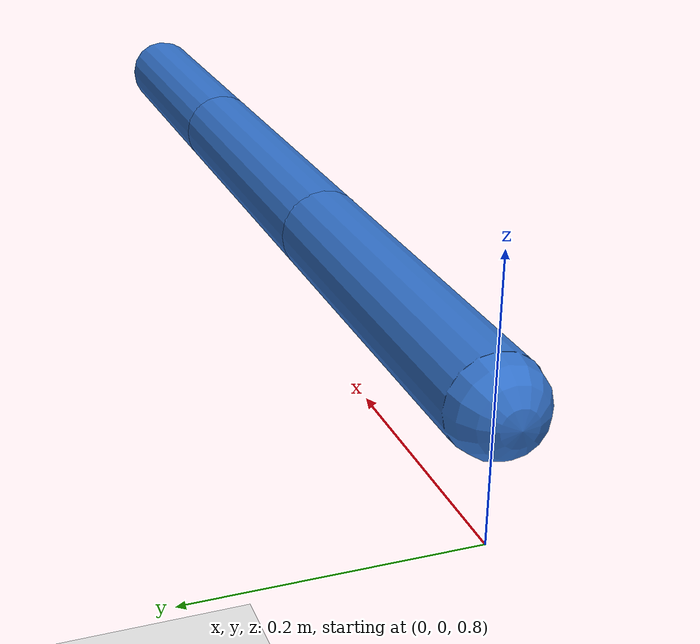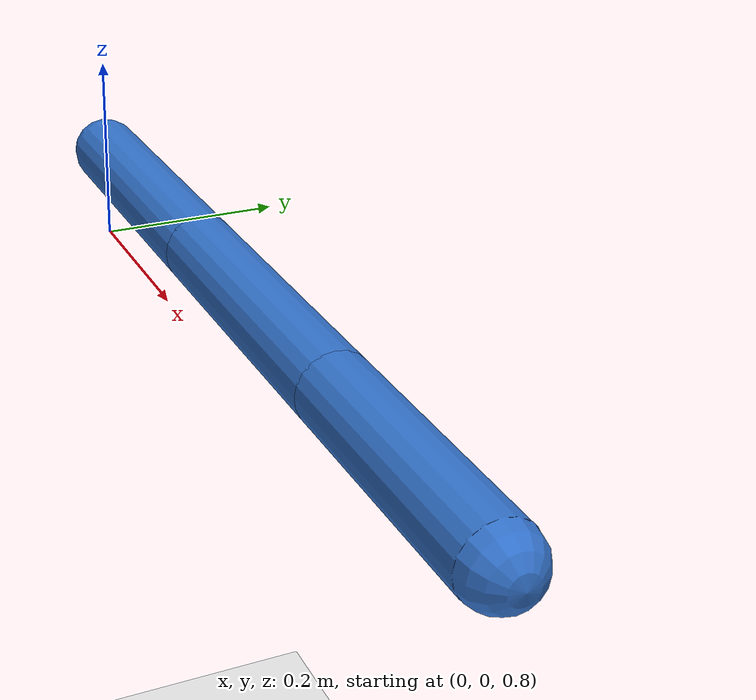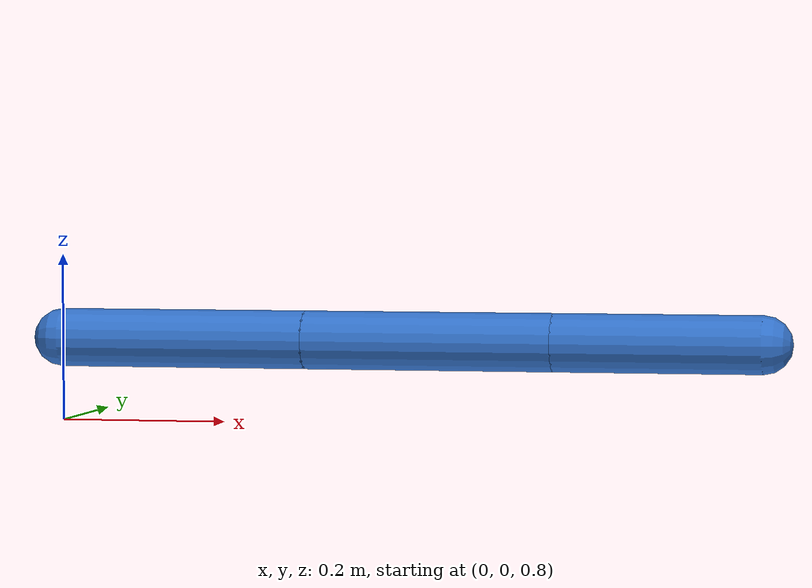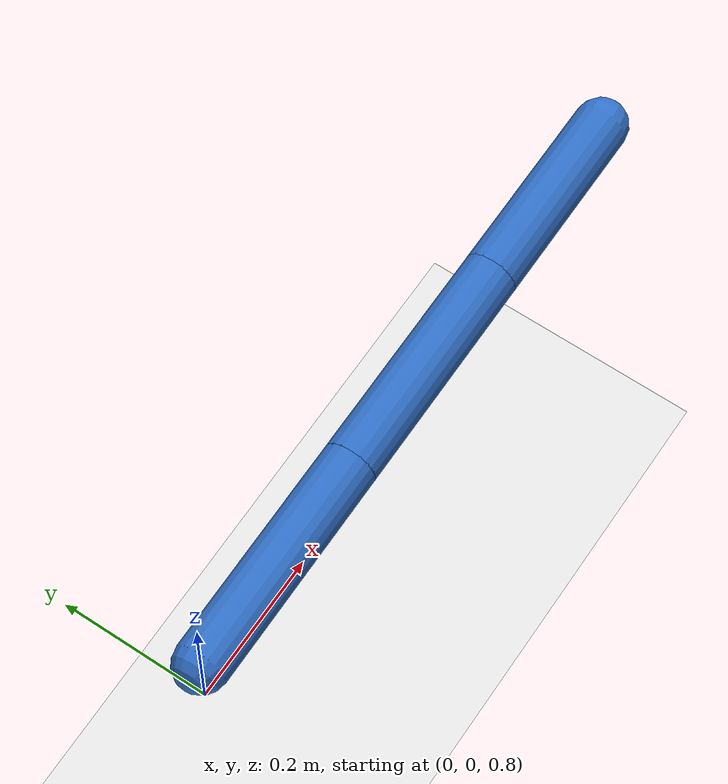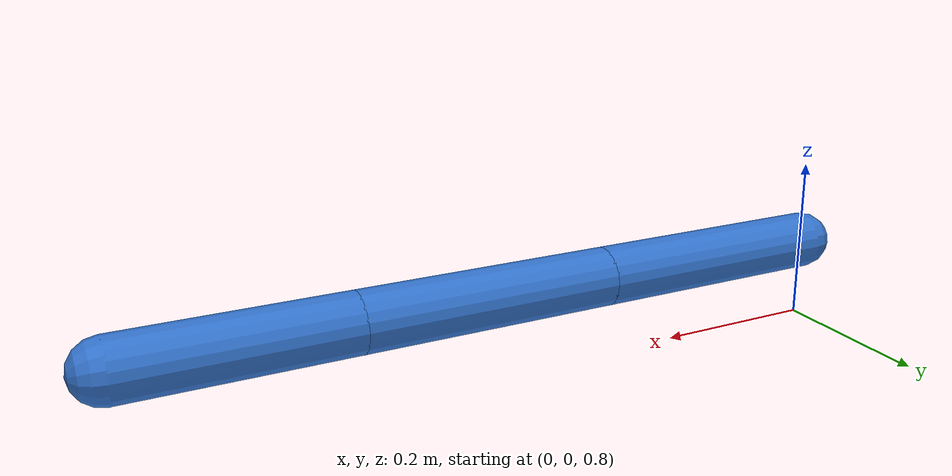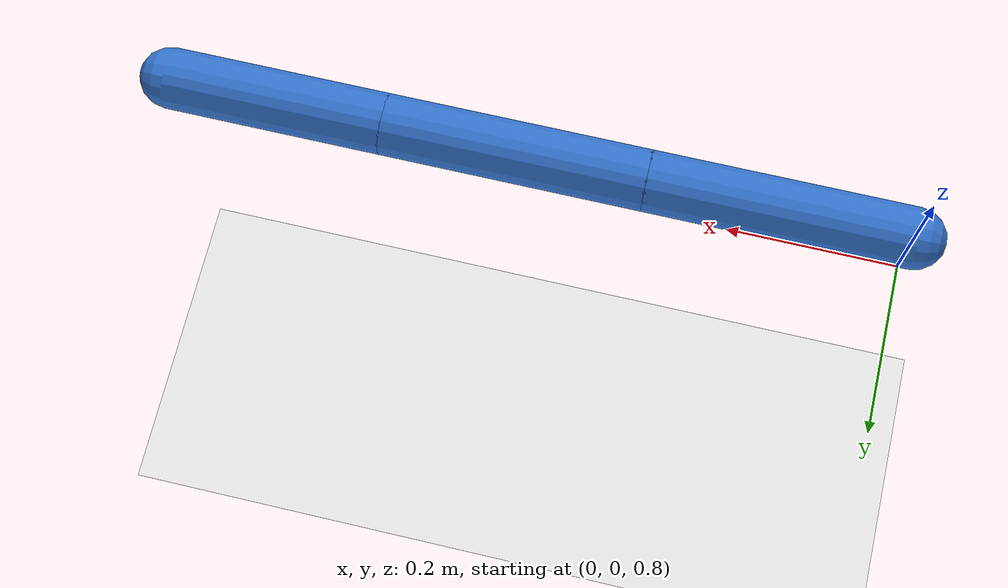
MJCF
<mujoco model="planar3r">
  <compiler angle="radian"/>
  <option gravity="0 0 -9.81" integrator="RK4" timestep="0.002"/>

  <default>
    <joint type="hinge" axis="0 1 0" damping="0.3" frictionloss="0.05"/>
    <geom type="capsule" size="0.035" rgba="0.2 0.45 0.8 1" contype="0" conaffinity="0"/>
  </default>

  <worldbody>
    <light diffuse="0.6 0.6 0.6" pos="0 0 3" dir="0 0 -1"/>
    <geom type="plane" size="2 2 0.1" rgba="0.9 0.9 0.9 1" contype="0" conaffinity="0"/>

    <body name="link1" pos="0 0 0.9">
      <joint name="q1" pos="0 0 0"/>
      <geom fromto="0 0 0  0.30 0 0" mass="1.5"/>
      <body name="link2" pos="0.30 0 0">
        <joint name="q2" pos="0 0 0"/>
        <geom fromto="0 0 0  0.30 0 0" mass="1.2"/>
        <body name="link3" pos="0.30 0 0">
          <joint name="q3" pos="0 0 0"/>
          <geom fromto="0 0 0  0.25 0 0" mass="0.8"/>
          <site name="ee" pos="0.25 0 0" size="0.015" rgba="0.8 0.1 0.1 1"/>
          <body name="payload" pos="0.25 0 0">
            <!-- no joint: rigidly welded to link3. Mass is set programmatically
                 per-experiment via model.body_mass[payload_id]. -->
            <geom type="sphere" size="0.03" mass="1e-6" rgba="0.1 0.7 0.1 1"/>
          </body>
        </body>
      </body>
    </body>
  </worldbody>

  <actuator>
    <!-- Franka-FR3-like per-joint torque limits (Nm), scaled down for a 3-DOF
         reduced-order arm: proximal joints carry more load-bearing torque. -->
    <motor name="m1" joint="q1" ctrlrange="-87 87" gear="1"/>
    <motor name="m2" joint="q2" ctrlrange="-87 87" gear="1"/>
    <motor name="m3" joint="q3" ctrlrange="-12 12" gear="1"/>
  </actuator>
</mujoco>
